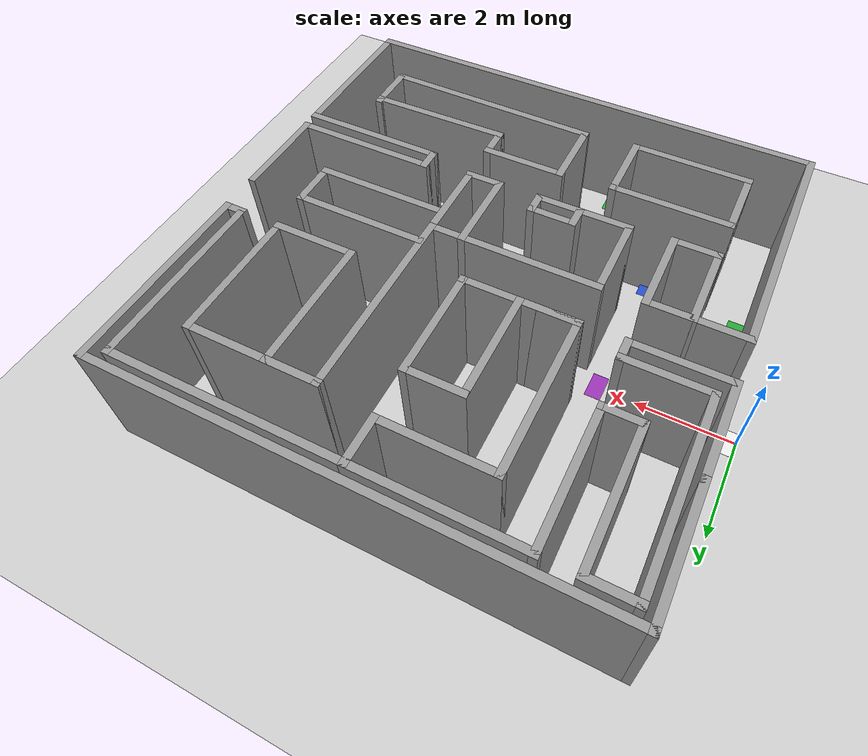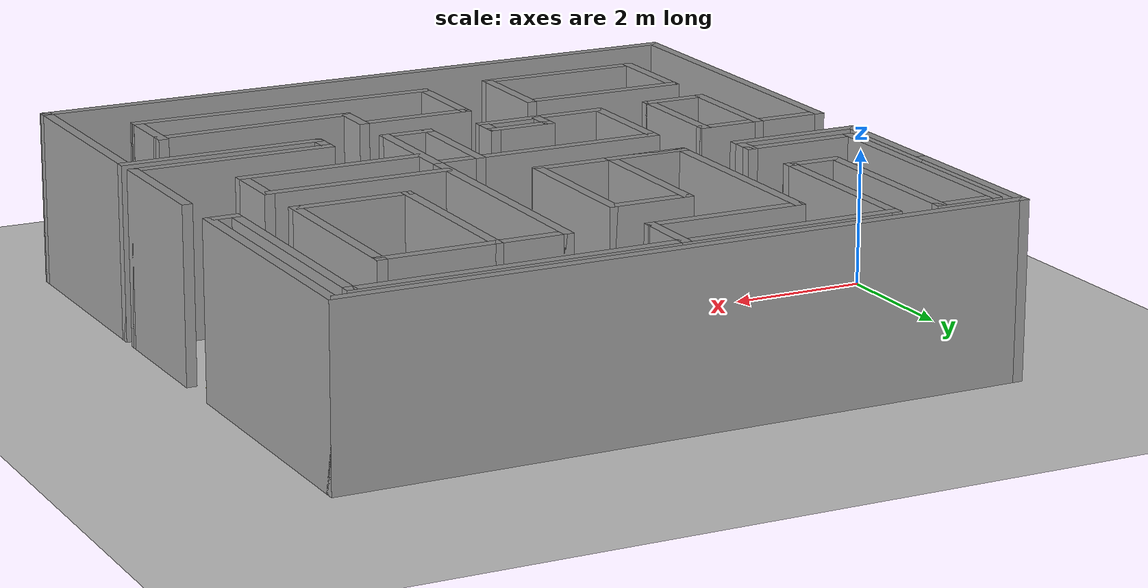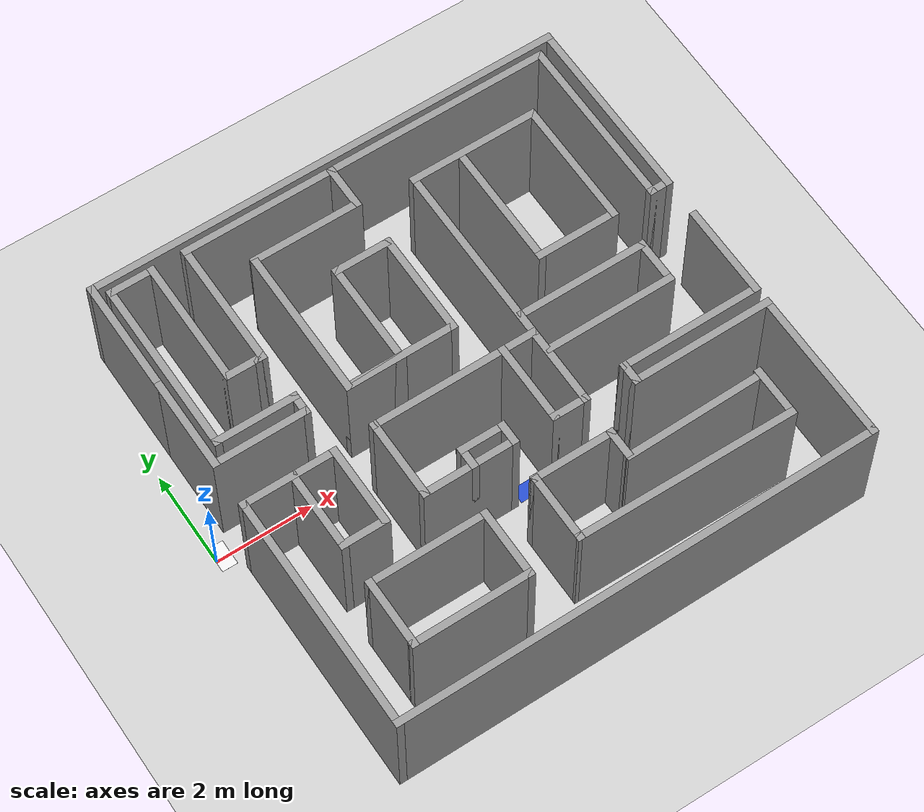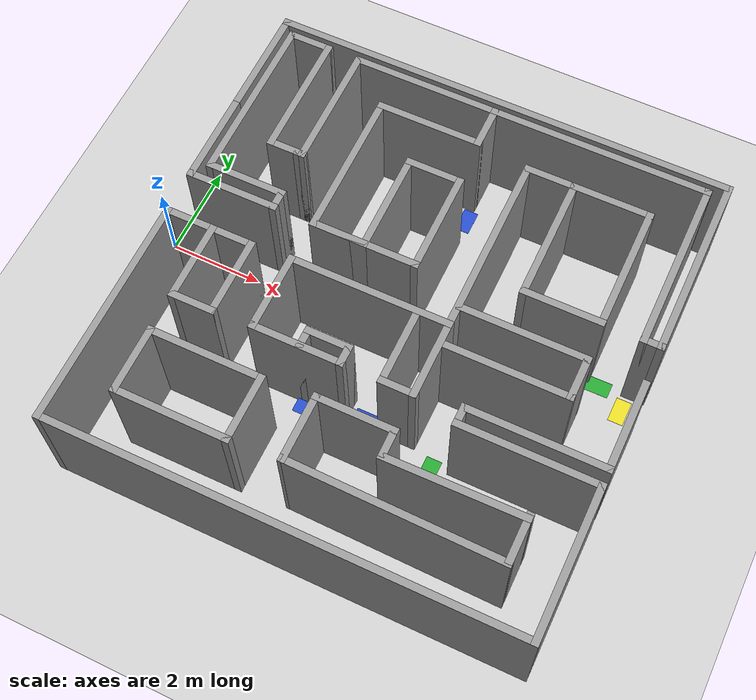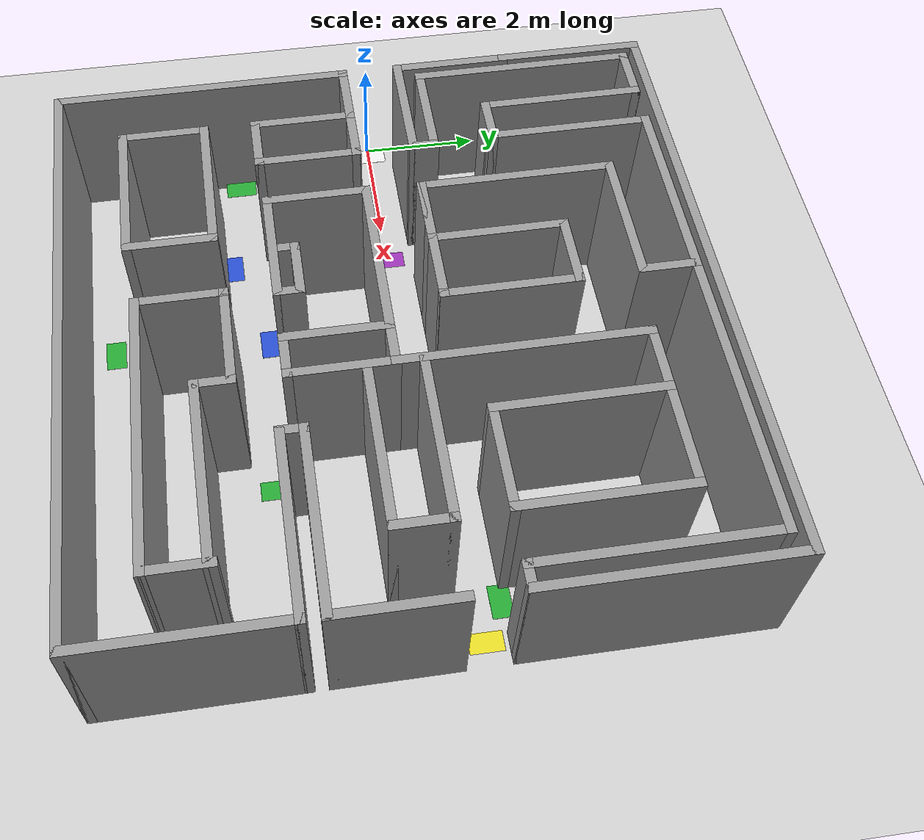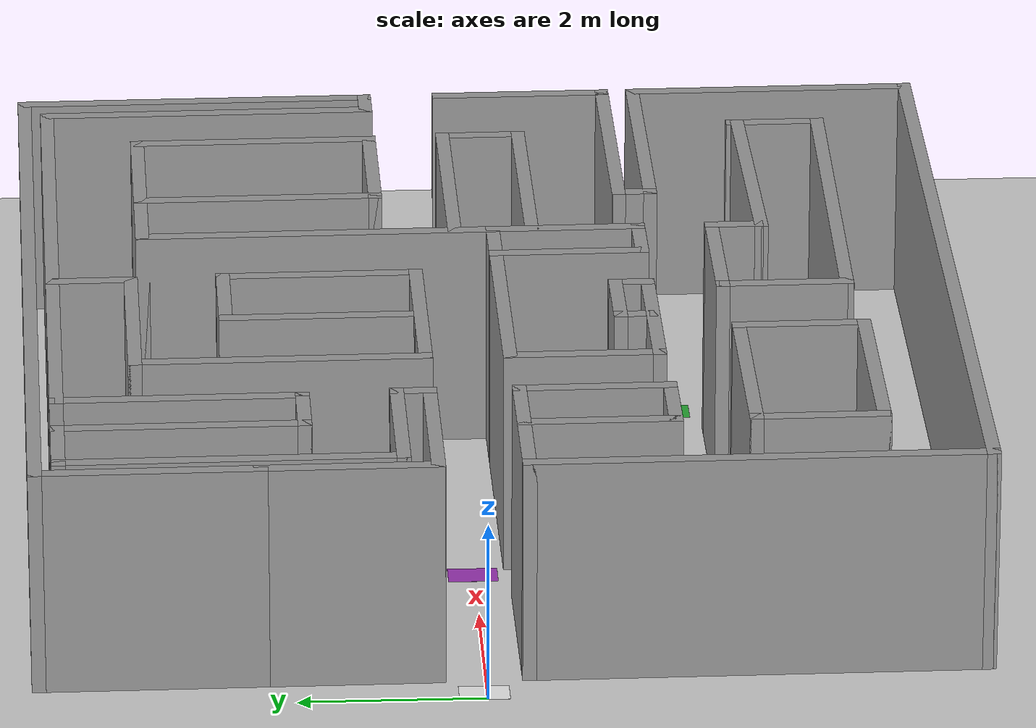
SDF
<sdf version="1.4">
  <world name="default">

    <scene>
      <ambient>0.4 0.4 0.4 1</ambient>
      <background>0.7 0.7 0.7 1</background>
      <shadows>true</shadows>
    </scene>

    <!-- A global light source -->
    <include>
      <uri>model://sun</uri>
    </include>

    <!-- A ground plane -->
    <include>
      <uri>model://ground_plane</uri>
    </include>

    <!--My maze_prova -->
    <include>
      <uri>model://maze_final1</uri>
	<pose> 5.4 -0.28 0 0 0 -1.5664 </pose>
    </include>

	<!--Cartello purple -->
    <include>
      <uri>model://tile_purple</uri>
	<name>tile_purple_1</name>
	<pose> 2.77 0.03 0.1 0 0 0</pose>
    </include>

	<!--Cartelli blue -->
 <include>
      <uri>model://tile_blue</uri>
	<name>tile_blue_1</name>
	<pose> 5.40 3.20 0.1 0 0 0</pose>
    </include>
    <include>
      <uri>model://tile_blue</uri>
	<name>tile_blue_2</name>
	<pose> 2.6 -2.7 0.1 0 0 -1.56</pose>
    </include>

	<include>
      <uri>model://tile_blue</uri>
	<name>tile_blue_3</name>
	<pose> 4.3 -2.2 0.1 0 0 -1.56</pose>
    </include>

	<include>
      <uri>model://tile_blue</uri>
	<name>tile_blue_4</name>
	<pose> 5.46 -1.87 0.0 0 0 -1.56</pose>
    </include>

	<!--Cartello verde -->
    <include>
      <uri>model://tile_green</uri>
	<name>tile_green_1</name>
	<pose> 0.73 -2.44 0.1 0 0 0</pose>
    </include>

    <include>
      <uri>model://tile_green</uri>
	<name>tile_green_2</name>
	<pose> 4.18 -4.8 0.1 0 0 -1.56</pose>
    </include>
	<include>
      <uri>model://tile_green</uri>
	<name>tile_green_3</name>
	<pose> 7.06 -2.33 0.0 0 0 0</pose>
    </include>
<include>
      <uri>model://tile_green</uri>
	<name>tile_green_3</name>
	<pose> 9.40 0.81 0.0 0 0 -1.56</pose>
    </include>

<!--Cartello Bianco -->
	<include>
      <uri>model://tile_white</uri>
	<name>tile_white_1</name>
	<pose> 0.14 0.038 0.0 0 0 0</pose>
    </include>

<!--Cartello Giallo -->
	<include>
      <uri>model://tile_yellow</uri>
	<name>tile_yellow_1</name>
	<pose> 10.01 0.48 0.0 0 0 0</pose>
    </include>

    <physics type="ode">
      <real_time_update_rate>1000.0</real_time_update_rate>
      <max_step_size>0.001</max_step_size>
      <real_time_factor>1</real_time_factor>
      <ode>
        <solver>
          <type>quick</type>
          <iters>150</iters>
          <precon_iters>0</precon_iters>
          <sor>1.400000</sor>
          <use_dynamic_moi_rescaling>1</use_dynamic_moi_rescaling>
        </solver>
        <constraints>
          <cfm>0.00001</cfm>
          <erp>0.2</erp>
          <contact_max_correcting_vel>2000.000000</contact_max_correcting_vel>
          <contact_surface_layer>0.01000</contact_surface_layer>
        </constraints>
      </ode>
    </physics>

  <gui fullscreen='0'>
      <camera name='user_camera'>
        <pose>0.8 0.0 12.0 0 1.5708 0</pose>
        <view_controller>orbit</view_controller>
      </camera>
    </gui>
  </world>

</sdf>

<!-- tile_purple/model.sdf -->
<sdf version='1.6'>
  <model name='tile_purple'>
    <link name='link'>
      <inertial>
        <mass>1</mass>
        <inertia>
          <ixx>0.166667</ixx>
          <ixy>0</ixy>
          <ixz>0</ixz>
          <iyy>0.166667</iyy>
          <iyz>0</iyz>
          <izz>0.166667</izz>
        </inertia>
      </inertial>
      <self_collide>0</self_collide>
      <enable_wind>0</enable_wind>
      <kinematic>0</kinematic>
      <pose frame=''>0 0 0 0 -0 0</pose>
      <visual name='visual'>
        <geometry>
          <box>
            <size>0.318855 0.535036 0.0015</size>
          </box>
        </geometry>
        <material>
          <script>
            <name>Gazebo/Purple</name>
            <uri>file://media/materials/scripts/gazebo.material</uri>
          </script>
        </material>
        <pose frame=''>0 0 0 0 -0 0</pose>
        <transparency>0</transparency>
        <cast_shadows>1</cast_shadows>
      </visual>
      <collision name='collision'>
        <laser_retro>0</laser_retro>
        <max_contacts>10</max_contacts>
        <pose frame=''>0 0 0 0 -0 0</pose>
        <geometry>
          <box>
            <size>0.318855 0.535036 0.00001</size>
          </box>
        </geometry>
        <surface>
          <friction>
            <ode>
              <mu>1</mu>
              <mu2>1</mu2>
              <fdir1>0 0 0</fdir1>
              <slip1>0</slip1>
              <slip2>0</slip2>
            </ode>
            <torsional>
              <coefficient>1</coefficient>
              <patch_radius>0</patch_radius>
              <surface_radius>0</surface_radius>
              <use_patch_radius>1</use_patch_radius>
              <ode>
                <slip>0</slip>
              </ode>
            </torsional>
          </friction>
          <bounce>
            <restitution_coefficient>0</restitution_coefficient>
            <threshold>1e+06</threshold>
          </bounce>
          <contact>
            <collide_without_contact>0</collide_without_contact>
            <collide_without_contact_bitmask>1</collide_without_contact_bitmask>
            <collide_bitmask>1</collide_bitmask>
            <ode>
              <soft_cfm>0</soft_cfm>
              <soft_erp>0.2</soft_erp>
              <kp>1e+13</kp>
              <kd>1</kd>
              <max_vel>0.01</max_vel>
              <min_depth>0</min_depth>
            </ode>
            <bullet>
              <split_impulse>1</split_impulse>
              <split_impulse_penetration_threshold>-0.01</split_impulse_penetration_threshold>
              <soft_cfm>0</soft_cfm>
              <soft_erp>0.2</soft_erp>
              <kp>1e+13</kp>
              <kd>1</kd>
            </bullet>
          </contact>
        </surface>
      </collision>
    </link>
    <static>0</static>
    <allow_auto_disable>1</allow_auto_disable>
  </model>
</sdf>

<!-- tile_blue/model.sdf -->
<sdf version='1.6'>
  <model name='tile_blue'>
    <link name='link'>
      <inertial>
        <mass>1</mass>
        <inertia>
          <ixx>0.166667</ixx>
          <ixy>0</ixy>
          <ixz>0</ixz>
          <iyy>0.166667</iyy>
          <iyz>0</iyz>
          <izz>0.166667</izz>
        </inertia>
      </inertial>
      <self_collide>0</self_collide>
      <enable_wind>0</enable_wind>
      <kinematic>0</kinematic>
      <pose frame=''>0 0 0 0 -0 0</pose>
      <visual name='visual'>
        <geometry>
          <box>
            <size>0.318855 0.535036 0.0015</size>
          </box>
        </geometry>
        <material>
          <script>
            <name>Gazebo/Blue</name>
            <uri>file://media/materials/scripts/gazebo.material</uri>
          </script>
        </material>
        <pose frame=''>0 0 0 0 -0 0</pose>
        <transparency>0</transparency>
        <cast_shadows>1</cast_shadows>
      </visual>
      <collision name='collision'>
        <laser_retro>0</laser_retro>
        <max_contacts>10</max_contacts>
        <pose frame=''>0 0 0 0 -0 0</pose>
        <geometry>
          <box>
            <size>0.318855 0.535036 0.00001</size>
          </box>
        </geometry>
        <surface>
          <friction>
            <ode>
              <mu>1</mu>
              <mu2>1</mu2>
              <fdir1>0 0 0</fdir1>
              <slip1>0</slip1>
              <slip2>0</slip2>
            </ode>
            <torsional>
              <coefficient>1</coefficient>
              <patch_radius>0</patch_radius>
              <surface_radius>0</surface_radius>
              <use_patch_radius>1</use_patch_radius>
              <ode>
                <slip>0</slip>
              </ode>
            </torsional>
          </friction>
          <bounce>
            <restitution_coefficient>0</restitution_coefficient>
            <threshold>1e+06</threshold>
          </bounce>
          <contact>
            <collide_without_contact>0</collide_without_contact>
            <collide_without_contact_bitmask>1</collide_without_contact_bitmask>
            <collide_bitmask>1</collide_bitmask>
            <ode>
              <soft_cfm>0</soft_cfm>
              <soft_erp>0.2</soft_erp>
              <kp>1e+13</kp>
              <kd>1</kd>
              <max_vel>0.01</max_vel>
              <min_depth>0</min_depth>
            </ode>
            <bullet>
              <split_impulse>1</split_impulse>
              <split_impulse_penetration_threshold>-0.01</split_impulse_penetration_threshold>
              <soft_cfm>0</soft_cfm>
              <soft_erp>0.2</soft_erp>
              <kp>1e+13</kp>
              <kd>1</kd>
            </bullet>
          </contact>
        </surface>
      </collision>
    </link>
    <static>0</static>
    <allow_auto_disable>1</allow_auto_disable>
  </model>
</sdf>

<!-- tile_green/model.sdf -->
<sdf version='1.6'>
  <model name='tile_green'>
    <link name='link'>
      <inertial>
        <mass>1</mass>
        <inertia>
          <ixx>0.166667</ixx>
          <ixy>0</ixy>
          <ixz>0</ixz>
          <iyy>0.166667</iyy>
          <iyz>0</iyz>
          <izz>0.166667</izz>
        </inertia>
      </inertial>
      <self_collide>0</self_collide>
      <enable_wind>0</enable_wind>
      <kinematic>0</kinematic>
      <pose frame=''>0 0 0 0 -0 0</pose>
      <visual name='visual'>
        <geometry>
          <box>
            <size>0.33 0.535036 0.0015</size>
          </box>
        </geometry>
        <material>
          <script>
            <name>Gazebo/Green</name>
            <uri>file://media/materials/scripts/gazebo.material</uri>
          </script>
        </material>
        <pose frame=''>0 0 0 0 -0 0</pose>
        <transparency>0</transparency>
        <cast_shadows>1</cast_shadows>
      </visual>
      <collision name='collision'>
        <laser_retro>0</laser_retro>
        <max_contacts>10</max_contacts>
        <pose frame=''>0 0 0 0 -0 0</pose>
        <geometry>
          <box>
            <size>0.318855 0.535036 0.00001</size>
          </box>
        </geometry>
        <surface>
          <friction>
            <ode>
              <mu>1</mu>
              <mu2>1</mu2>
              <fdir1>0 0 0</fdir1>
              <slip1>0</slip1>
              <slip2>0</slip2>
            </ode>
            <torsional>
              <coefficient>1</coefficient>
              <patch_radius>0</patch_radius>
              <surface_radius>0</surface_radius>
              <use_patch_radius>1</use_patch_radius>
              <ode>
                <slip>0</slip>
              </ode>
            </torsional>
          </friction>
          <bounce>
            <restitution_coefficient>0</restitution_coefficient>
            <threshold>1e+06</threshold>
          </bounce>
          <contact>
            <collide_without_contact>0</collide_without_contact>
            <collide_without_contact_bitmask>1</collide_without_contact_bitmask>
            <collide_bitmask>1</collide_bitmask>
            <ode>
              <soft_cfm>0</soft_cfm>
              <soft_erp>0.2</soft_erp>
              <kp>1e+13</kp>
              <kd>1</kd>
              <max_vel>0.01</max_vel>
              <min_depth>0</min_depth>
            </ode>
            <bullet>
              <split_impulse>1</split_impulse>
              <split_impulse_penetration_threshold>-0.01</split_impulse_penetration_threshold>
              <soft_cfm>0</soft_cfm>
              <soft_erp>0.2</soft_erp>
              <kp>1e+13</kp>
              <kd>1</kd>
            </bullet>
          </contact>
        </surface>
      </collision>
    </link>
    <static>0</static>
    <allow_auto_disable>1</allow_auto_disable>
  </model>
</sdf>

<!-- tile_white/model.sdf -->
<sdf version='1.6'>
  <model name='tile_white'>
    <link name='link'>
      <inertial>
        <mass>1</mass>
        <inertia>
          <ixx>0.166667</ixx>
          <ixy>0</ixy>
          <ixz>0</ixz>
          <iyy>0.166667</iyy>
          <iyz>0</iyz>
          <izz>0.166667</izz>
        </inertia>
      </inertial>
      <self_collide>0</self_collide>
      <enable_wind>0</enable_wind>
      <kinematic>0</kinematic>
      <pose frame=''>0 0 0 0 -0 0</pose>
      <visual name='visual'>
        <geometry>
          <box>
            <size>0.318855 0.535036 0.0015</size>
          </box>
        </geometry>
        <material>
          <script>
            <name>Gazebo/White</name>
            <uri>file://media/materials/scripts/gazebo.material</uri>
          </script>
        </material>
        <pose frame=''>0 0 0 0 -0 0</pose>
        <transparency>0</transparency>
        <cast_shadows>1</cast_shadows>
      </visual>
      <collision name='collision'>
        <laser_retro>0</laser_retro>
        <max_contacts>10</max_contacts>
        <pose frame=''>0 0 0 0 -0 0</pose>
        <geometry>
          <box>
            <size>0.318855 0.535036 0.00001</size>
          </box>
        </geometry>
        <surface>
          <friction>
            <ode>
              <mu>1</mu>
              <mu2>1</mu2>
              <fdir1>0 0 0</fdir1>
              <slip1>0</slip1>
              <slip2>0</slip2>
            </ode>
            <torsional>
              <coefficient>1</coefficient>
              <patch_radius>0</patch_radius>
              <surface_radius>0</surface_radius>
              <use_patch_radius>1</use_patch_radius>
              <ode>
                <slip>0</slip>
              </ode>
            </torsional>
          </friction>
          <bounce>
            <restitution_coefficient>0</restitution_coefficient>
            <threshold>1e+06</threshold>
          </bounce>
          <contact>
            <collide_without_contact>0</collide_without_contact>
            <collide_without_contact_bitmask>1</collide_without_contact_bitmask>
            <collide_bitmask>1</collide_bitmask>
            <ode>
              <soft_cfm>0</soft_cfm>
              <soft_erp>0.2</soft_erp>
              <kp>1e+13</kp>
              <kd>1</kd>
              <max_vel>0.01</max_vel>
              <min_depth>0</min_depth>
            </ode>
            <bullet>
              <split_impulse>1</split_impulse>
              <split_impulse_penetration_threshold>-0.01</split_impulse_penetration_threshold>
              <soft_cfm>0</soft_cfm>
              <soft_erp>0.2</soft_erp>
              <kp>1e+13</kp>
              <kd>1</kd>
            </bullet>
          </contact>
        </surface>
      </collision>
    </link>
    <static>0</static>
    <allow_auto_disable>1</allow_auto_disable>
  </model>
</sdf>

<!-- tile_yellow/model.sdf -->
<sdf version='1.6'>
  <model name='tile_yellow'>
    <link name='link'>
      <inertial>
        <mass>1</mass>
        <inertia>
          <ixx>0.166667</ixx>
          <ixy>0</ixy>
          <ixz>0</ixz>
          <iyy>0.166667</iyy>
          <iyz>0</iyz>
          <izz>0.166667</izz>
        </inertia>
      </inertial>
      <self_collide>0</self_collide>
      <enable_wind>0</enable_wind>
      <kinematic>0</kinematic>
      <pose frame=''>0 0 0 0 -0 0</pose>
      <visual name='visual'>
        <geometry>
          <box>
             <size>0.318855 0.535036 0.000015</size>
          </box>
        </geometry>
        <material>
          <script>
            <name>Gazebo/Yellow</name>
            <uri>file://media/materials/scripts/gazebo.material</uri>
          </script>
        </material>
        <pose frame=''>0 0 0 0 -0 0</pose>
        <transparency>0</transparency>
        <cast_shadows>1</cast_shadows>
      </visual>
      <collision name='collision'>
        <laser_retro>0</laser_retro>
        <max_contacts>10</max_contacts>
        <pose frame=''>0 0 0 0 -0 0</pose>
        <geometry>
          <box>
            <size>0.318855 0.535036 0.00001</size>
          </box>
        </geometry>
        <surface>
          <friction>
            <ode>
              <mu>1</mu>
              <mu2>1</mu2>
              <fdir1>0 0 0</fdir1>
              <slip1>0</slip1>
              <slip2>0</slip2>
            </ode>
            <torsional>
              <coefficient>1</coefficient>
              <patch_radius>0</patch_radius>
              <surface_radius>0</surface_radius>
              <use_patch_radius>1</use_patch_radius>
              <ode>
                <slip>0</slip>
              </ode>
            </torsional>
          </friction>
          <bounce>
            <restitution_coefficient>0</restitution_coefficient>
            <threshold>1e+06</threshold>
          </bounce>
          <contact>
            <collide_without_contact>0</collide_without_contact>
            <collide_without_contact_bitmask>1</collide_without_contact_bitmask>
            <collide_bitmask>1</collide_bitmask>
            <ode>
              <soft_cfm>0</soft_cfm>
              <soft_erp>0.2</soft_erp>
              <kp>1e+13</kp>
              <kd>1</kd>
              <max_vel>0.01</max_vel>
              <min_depth>0</min_depth>
            </ode>
            <bullet>
              <split_impulse>1</split_impulse>
              <split_impulse_penetration_threshold>-0.01</split_impulse_penetration_threshold>
              <soft_cfm>0</soft_cfm>
              <soft_erp>0.2</soft_erp>
              <kp>1e+13</kp>
              <kd>1</kd>
            </bullet>
          </contact>
        </surface>
      </collision>
    </link>
    <static>0</static>
    <allow_auto_disable>1</allow_auto_disable>
  </model>
</sdf>
